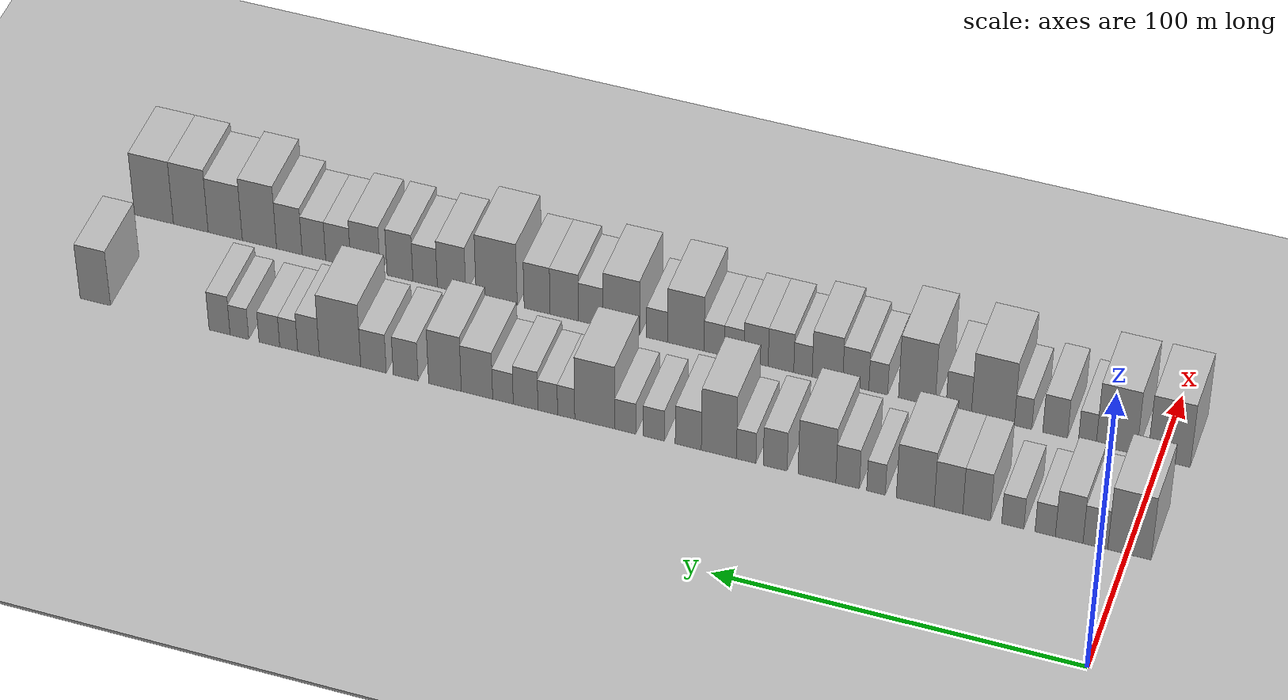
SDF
<sdf version="1.6">
 <world name="default">
  <include><name>ground_plane_1</name><uri>model://HANNAS_ground_plane</uri></include>
  <include>
   <name>ground_plane_2</name>
   <uri>model://HANNAS_ground_plane</uri>
   <pose>100 0 0  0 0 0</pose>
  </include>
  <model name="building_36">
   <static>1</static>
   <pose>50.0000 -0.5965 0 0.000000 0.000000 0.000000</pose>
   <link name="link">
    <pose>0 0 12.00 0 0 0</pose>
    <collision name="collision"><geometry><box><size>20.0000 11.5688 24.0000</size></box></geometry></collision>
    <visual name="visual">
     <cast_shadows>0</cast_shadows>
     <geometry><box><size>20.0000 11.5688 24.0000</size></box></geometry>
     <material>
      <script>
       <uri>model://HANNAS_wall/materials/scripts</uri>
       <uri>model://HANNAS_wall/materials/textures</uri>
       <name>vrc/HANNAS_wall</name>
      </script>
     </material>
    </visual>
   </link>
  </model>
  <model name="building_37">
   <static>1</static>
   <pose>50.0000 8.4967 0 0.000000 0.000000 0.000000</pose>
   <link name="link">
    <pose>0 0 7.50 0 0 0</pose>
    <collision name="collision"><geometry><box><size>20.0000 6.6175 15.0000</size></box></geometry></collision>
    <visual name="visual">
     <cast_shadows>0</cast_shadows>
     <geometry><box><size>20.0000 6.6175 15.0000</size></box></geometry>
     <material>
      <script>
       <uri>model://HANNAS_wall/materials/scripts</uri>
       <uri>model://HANNAS_wall/materials/textures</uri>
       <name>vrc/HANNAS_wall</name>
      </script>
     </material>
    </visual>
   </link>
  </model>
  <model name="building_38">
   <static>1</static>
   <pose>50.0000 15.5070 0 0.000000 0.000000 0.000000</pose>
   <link name="link">
    <pose>0 0 9.00 0 0 0</pose>
    <collision name="collision"><geometry><box><size>20.0000 7.4033 18.0000</size></box></geometry></collision>
    <visual name="visual">
     <cast_shadows>0</cast_shadows>
     <geometry><box><size>20.0000 7.4033 18.0000</size></box></geometry>
     <material>
      <script>
       <uri>model://HANNAS_wall/materials/scripts</uri>
       <uri>model://HANNAS_wall/materials/textures</uri>
       <name>vrc/HANNAS_wall</name>
      </script>
     </material>
    </visual>
   </link>
  </model>
  <model name="building_39">
   <static>1</static>
   <pose>50.0000 21.9332 0 0.000000 0.000000 0.000000</pose>
   <link name="link">
    <pose>0 0 6.00 0 0 0</pose>
    <collision name="collision"><geometry><box><size>20.0000 5.4490 12.0000</size></box></geometry></collision>
    <visual name="visual">
     <cast_shadows>0</cast_shadows>
     <geometry><box><size>20.0000 5.4490 12.0000</size></box></geometry>
     <material>
      <script>
       <uri>model://HANNAS_wall/materials/scripts</uri>
       <uri>model://HANNAS_wall/materials/textures</uri>
       <name>vrc/HANNAS_wall</name>
      </script>
     </material>
    </visual>
   </link>
  </model>
  <model name="building_40">
   <static>1</static>
   <pose>50.0000 30.6515 0 0.000000 0.000000 0.000000</pose>
   <link name="link">
    <pose>0 0 6.00 0 0 0</pose>
    <collision name="collision"><geometry><box><size>20.0000 5.9877 12.0000</size></box></geometry></collision>
    <visual name="visual">
     <cast_shadows>0</cast_shadows>
     <geometry><box><size>20.0000 5.9877 12.0000</size></box></geometry>
     <material>
      <script>
       <uri>model://HANNAS_wall/materials/scripts</uri>
       <uri>model://HANNAS_wall/materials/textures</uri>
       <name>vrc/HANNAS_wall</name>
      </script>
     </material>
    </visual>
   </link>
  </model>
  <model name="building_41">
   <static>1</static>
   <pose>50.0000 40.4001 0 0.000000 0.000000 0.000000</pose>
   <link name="link">
    <pose>0 0 9.00 0 0 0</pose>
    <collision name="collision"><geometry><box><size>20.0000 7.5096 18.0000</size></box></geometry></collision>
    <visual name="visual">
     <cast_shadows>0</cast_shadows>
     <geometry><box><size>20.0000 7.5096 18.0000</size></box></geometry>
     <material>
      <script>
       <uri>model://HANNAS_wall/materials/scripts</uri>
       <uri>model://HANNAS_wall/materials/textures</uri>
       <name>vrc/HANNAS_wall</name>
      </script>
     </material>
    </visual>
   </link>
  </model>
  <model name="building_42">
   <static>1</static>
   <pose>50.0000 48.0204 0 0.000000 0.000000 0.000000</pose>
   <link name="link">
    <pose>0 0 9.00 0 0 0</pose>
    <collision name="collision"><geometry><box><size>20.0000 7.7310 18.0000</size></box></geometry></collision>
    <visual name="visual">
     <cast_shadows>0</cast_shadows>
     <geometry><box><size>20.0000 7.7310 18.0000</size></box></geometry>
     <material>
      <script>
       <uri>model://HANNAS_wall/materials/scripts</uri>
       <uri>model://HANNAS_wall/materials/textures</uri>
       <name>vrc/HANNAS_wall</name>
      </script>
     </material>
    </visual>
   </link>
  </model>
  <model name="building_43">
   <static>1</static>
   <pose>50.0000 57.0423 0 0.000000 0.000000 0.000000</pose>
   <link name="link">
    <pose>0 0 10.50 0 0 0</pose>
    <collision name="collision"><geometry><box><size>20.0000 10.3128 21.0000</size></box></geometry></collision>
    <visual name="visual">
     <cast_shadows>0</cast_shadows>
     <geometry><box><size>20.0000 10.3128 21.0000</size></box></geometry>
     <material>
      <script>
       <uri>model://HANNAS_wall/materials/scripts</uri>
       <uri>model://HANNAS_wall/materials/textures</uri>
       <name>vrc/HANNAS_wall</name>
      </script>
     </material>
    </visual>
   </link>
  </model>
  <model name="building_44">
   <static>1</static>
   <pose>50.0000 67.7351 0 0.000000 0.000000 0.000000</pose>
   <link name="link">
    <pose>0 0 6.00 0 0 0</pose>
    <collision name="collision"><geometry><box><size>20.0000 5.0728 12.0000</size></box></geometry></collision>
    <visual name="visual">
     <cast_shadows>0</cast_shadows>
     <geometry><box><size>20.0000 5.0728 12.0000</size></box></geometry>
     <material>
      <script>
       <uri>model://HANNAS_wall/materials/scripts</uri>
       <uri>model://HANNAS_wall/materials/textures</uri>
       <name>vrc/HANNAS_wall</name>
      </script>
     </material>
    </visual>
   </link>
  </model>
  <model name="building_45">
   <static>1</static>
   <pose>50.0000 75.4985 0 0.000000 0.000000 0.000000</pose>
   <link name="link">
    <pose>0 0 7.50 0 0 0</pose>
    <collision name="collision"><geometry><box><size>20.0000 6.4539 15.0000</size></box></geometry></collision>
    <visual name="visual">
     <cast_shadows>0</cast_shadows>
     <geometry><box><size>20.0000 6.4539 15.0000</size></box></geometry>
     <material>
      <script>
       <uri>model://HANNAS_wall/materials/scripts</uri>
       <uri>model://HANNAS_wall/materials/textures</uri>
       <name>vrc/HANNAS_wall</name>
      </script>
     </material>
    </visual>
   </link>
  </model>
  <model name="building_46">
   <static>1</static>
   <pose>50.0000 83.9208 0 0.000000 0.000000 0.000000</pose>
   <link name="link">
    <pose>0 0 10.50 0 0 0</pose>
    <collision name="collision"><geometry><box><size>20.0000 10.3909 21.0000</size></box></geometry></collision>
    <visual name="visual">
     <cast_shadows>0</cast_shadows>
     <geometry><box><size>20.0000 10.3909 21.0000</size></box></geometry>
     <material>
      <script>
       <uri>model://HANNAS_wall/materials/scripts</uri>
       <uri>model://HANNAS_wall/materials/textures</uri>
       <name>vrc/HANNAS_wall</name>
      </script>
     </material>
    </visual>
   </link>
  </model>
  <model name="building_47">
   <static>1</static>
   <pose>50.0000 95.4158 0 0.000000 0.000000 0.000000</pose>
   <link name="link">
    <pose>0 0 7.50 0 0 0</pose>
    <collision name="collision"><geometry><box><size>20.0000 6.5991 15.0000</size></box></geometry></collision>
    <visual name="visual">
     <cast_shadows>0</cast_shadows>
     <geometry><box><size>20.0000 6.5991 15.0000</size></box></geometry>
     <material>
      <script>
       <uri>model://HANNAS_wall/materials/scripts</uri>
       <uri>model://HANNAS_wall/materials/textures</uri>
       <name>vrc/HANNAS_wall</name>
      </script>
     </material>
    </visual>
   </link>
  </model>
  <model name="building_48">
   <static>1</static>
   <pose>50.0000 103.4176 0 0.000000 0.000000 0.000000</pose>
   <link name="link">
    <pose>0 0 6.00 0 0 0</pose>
    <collision name="collision"><geometry><box><size>20.0000 5.4044 12.0000</size></box></geometry></collision>
    <visual name="visual">
     <cast_shadows>0</cast_shadows>
     <geometry><box><size>20.0000 5.4044 12.0000</size></box></geometry>
     <material>
      <script>
       <uri>model://HANNAS_wall/materials/scripts</uri>
       <uri>model://HANNAS_wall/materials/textures</uri>
       <name>vrc/HANNAS_wall</name>
      </script>
     </material>
    </visual>
   </link>
  </model>
  <model name="building_49">
   <static>1</static>
   <pose>50.0000 110.9824 0 0.000000 0.000000 0.000000</pose>
   <link name="link">
    <pose>0 0 12.00 0 0 0</pose>
    <collision name="collision"><geometry><box><size>20.0000 9.7251 24.0000</size></box></geometry></collision>
    <visual name="visual">
     <cast_shadows>0</cast_shadows>
     <geometry><box><size>20.0000 9.7251 24.0000</size></box></geometry>
     <material>
      <script>
       <uri>model://HANNAS_wall/materials/scripts</uri>
       <uri>model://HANNAS_wall/materials/textures</uri>
       <name>vrc/HANNAS_wall</name>
      </script>
     </material>
    </visual>
   </link>
  </model>
  <model name="building_50">
   <static>1</static>
   <pose>50.0000 119.4757 0 0.000000 0.000000 0.000000</pose>
   <link name="link">
    <pose>0 0 7.50 0 0 0</pose>
    <collision name="collision"><geometry><box><size>20.0000 7.2615 15.0000</size></box></geometry></collision>
    <visual name="visual">
     <cast_shadows>0</cast_shadows>
     <geometry><box><size>20.0000 7.2615 15.0000</size></box></geometry>
     <material>
      <script>
       <uri>model://HANNAS_wall/materials/scripts</uri>
       <uri>model://HANNAS_wall/materials/textures</uri>
       <name>vrc/HANNAS_wall</name>
      </script>
     </material>
    </visual>
   </link>
  </model>
  <model name="building_51">
   <static>1</static>
   <pose>50.0000 129.0980 0 0.000000 0.000000 0.000000</pose>
   <link name="link">
    <pose>0 0 6.00 0 0 0</pose>
    <collision name="collision"><geometry><box><size>20.0000 5.9830 12.0000</size></box></geometry></collision>
    <visual name="visual">
     <cast_shadows>0</cast_shadows>
     <geometry><box><size>20.0000 5.9830 12.0000</size></box></geometry>
     <material>
      <script>
       <uri>model://HANNAS_wall/materials/scripts</uri>
       <uri>model://HANNAS_wall/materials/textures</uri>
       <name>vrc/HANNAS_wall</name>
      </script>
     </material>
    </visual>
   </link>
  </model>
  <model name="building_52">
   <static>1</static>
   <pose>50.0000 137.0280 0 0.000000 0.000000 0.000000</pose>
   <link name="link">
    <pose>0 0 6.00 0 0 0</pose>
    <collision name="collision"><geometry><box><size>20.0000 5.8771 12.0000</size></box></geometry></collision>
    <visual name="visual">
     <cast_shadows>0</cast_shadows>
     <geometry><box><size>20.0000 5.8771 12.0000</size></box></geometry>
     <material>
      <script>
       <uri>model://HANNAS_wall/materials/scripts</uri>
       <uri>model://HANNAS_wall/materials/textures</uri>
       <name>vrc/HANNAS_wall</name>
      </script>
     </material>
    </visual>
   </link>
  </model>
  <model name="building_53">
   <static>1</static>
   <pose>50.0000 145.5949 0 0.000000 0.000000 0.000000</pose>
   <link name="link">
    <pose>0 0 12.00 0 0 0</pose>
    <collision name="collision"><geometry><box><size>20.0000 11.2568 24.0000</size></box></geometry></collision>
    <visual name="visual">
     <cast_shadows>0</cast_shadows>
     <geometry><box><size>20.0000 11.2568 24.0000</size></box></geometry>
     <material>
      <script>
       <uri>model://HANNAS_wall/materials/scripts</uri>
       <uri>model://HANNAS_wall/materials/textures</uri>
       <name>vrc/HANNAS_wall</name>
      </script>
     </material>
    </visual>
   </link>
  </model>
  <model name="building_54">
   <static>1</static>
   <pose>50.0000 153.6471 0 0.000000 0.000000 0.000000</pose>
   <link name="link">
    <pose>0 0 6.00 0 0 0</pose>
    <collision name="collision"><geometry><box><size>20.0000 4.8477 12.0000</size></box></geometry></collision>
    <visual name="visual">
     <cast_shadows>0</cast_shadows>
     <geometry><box><size>20.0000 4.8477 12.0000</size></box></geometry>
     <material>
      <script>
       <uri>model://HANNAS_wall/materials/scripts</uri>
       <uri>model://HANNAS_wall/materials/textures</uri>
       <name>vrc/HANNAS_wall</name>
      </script>
     </material>
    </visual>
   </link>
  </model>
  <model name="building_55">
   <static>1</static>
   <pose>50.0000 158.8419 0 0.000000 0.000000 0.000000</pose>
   <link name="link">
    <pose>0 0 6.00 0 0 0</pose>
    <collision name="collision"><geometry><box><size>20.0000 5.5418 12.0000</size></box></geometry></collision>
    <visual name="visual">
     <cast_shadows>0</cast_shadows>
     <geometry><box><size>20.0000 5.5418 12.0000</size></box></geometry>
     <material>
      <script>
       <uri>model://HANNAS_wall/materials/scripts</uri>
       <uri>model://HANNAS_wall/materials/textures</uri>
       <name>vrc/HANNAS_wall</name>
      </script>
     </material>
    </visual>
   </link>
  </model>
  <model name="building_56">
   <static>1</static>
   <pose>50.0000 165.1013 0 0.000000 0.000000 0.000000</pose>
   <link name="link">
    <pose>0 0 7.50 0 0 0</pose>
    <collision name="collision"><geometry><box><size>20.0000 6.9770 15.0000</size></box></geometry></collision>
    <visual name="visual">
     <cast_shadows>0</cast_shadows>
     <geometry><box><size>20.0000 6.9770 15.0000</size></box></geometry>
     <material>
      <script>
       <uri>model://HANNAS_wall/materials/scripts</uri>
       <uri>model://HANNAS_wall/materials/textures</uri>
       <name>vrc/HANNAS_wall</name>
      </script>
     </material>
    </visual>
   </link>
  </model>
  <model name="building_57">
   <static>1</static>
   <pose>50.0000 171.5074 0 0.000000 0.000000 0.000000</pose>
   <link name="link">
    <pose>0 0 6.00 0 0 0</pose>
    <collision name="collision"><geometry><box><size>20.0000 5.8352 12.0000</size></box></geometry></collision>
    <visual name="visual">
     <cast_shadows>0</cast_shadows>
     <geometry><box><size>20.0000 5.8352 12.0000</size></box></geometry>
     <material>
      <script>
       <uri>model://HANNAS_wall/materials/scripts</uri>
       <uri>model://HANNAS_wall/materials/textures</uri>
       <name>vrc/HANNAS_wall</name>
      </script>
     </material>
    </visual>
   </link>
  </model>
  <model name="building_58">
   <static>1</static>
   <pose>50.0000 178.8829 0 0.000000 0.000000 0.000000</pose>
   <link name="link">
    <pose>0 0 9.00 0 0 0</pose>
    <collision name="collision"><geometry><box><size>20.0000 8.9159 18.0000</size></box></geometry></collision>
    <visual name="visual">
     <cast_shadows>0</cast_shadows>
     <geometry><box><size>20.0000 8.9159 18.0000</size></box></geometry>
     <material>
      <script>
       <uri>model://HANNAS_wall/materials/scripts</uri>
       <uri>model://HANNAS_wall/materials/textures</uri>
       <name>vrc/HANNAS_wall</name>
      </script>
     </material>
    </visual>
   </link>
  </model>
  <model name="building_59">
   <static>1</static>
   <pose>50.0000 187.9936 0 0.000000 0.000000 0.000000</pose>
   <link name="link">
    <pose>0 0 10.50 0 0 0</pose>
    <collision name="collision"><geometry><box><size>20.0000 9.3054 21.0000</size></box></geometry></collision>
    <visual name="visual">
     <cast_shadows>0</cast_shadows>
     <geometry><box><size>20.0000 9.3054 21.0000</size></box></geometry>
     <material>
      <script>
       <uri>model://HANNAS_wall/materials/scripts</uri>
       <uri>model://HANNAS_wall/materials/textures</uri>
       <name>vrc/HANNAS_wall</name>
      </script>
     </material>
    </visual>
   </link>
  </model>
  <model name="building_60">
   <static>1</static>
   <pose>50.0000 199.2032 0 0.000000 0.000000 0.000000</pose>
   <link name="link">
    <pose>0 0 7.50 0 0 0</pose>
    <collision name="collision"><geometry><box><size>20.0000 7.1140 15.0000</size></box></geometry></collision>
    <visual name="visual">
     <cast_shadows>0</cast_shadows>
     <geometry><box><size>20.0000 7.1140 15.0000</size></box></geometry>
     <material>
      <script>
       <uri>model://HANNAS_wall/materials/scripts</uri>
       <uri>model://HANNAS_wall/materials/textures</uri>
       <name>vrc/HANNAS_wall</name>
      </script>
     </material>
    </visual>
   </link>
  </model>
  <model name="building_61">
   <static>1</static>
   <pose>50.0000 208.4197 0 0.000000 0.000000 0.000000</pose>
   <link name="link">
    <pose>0 0 7.50 0 0 0</pose>
    <collision name="collision"><geometry><box><size>20.0000 7.3190 15.0000</size></box></geometry></collision>
    <visual name="visual">
     <cast_shadows>0</cast_shadows>
     <geometry><box><size>20.0000 7.3190 15.0000</size></box></geometry>
     <material>
      <script>
       <uri>model://HANNAS_wall/materials/scripts</uri>
       <uri>model://HANNAS_wall/materials/textures</uri>
       <name>vrc/HANNAS_wall</name>
      </script>
     </material>
    </visual>
   </link>
  </model>
  <model name="building_62">
   <static>1</static>
   <pose>50.0000 218.0599 0 0.000000 0.000000 0.000000</pose>
   <link name="link">
    <pose>0 0 12.00 0 0 0</pose>
    <collision name="collision"><geometry><box><size>20.0000 11.9614 24.0000</size></box></geometry></collision>
    <visual name="visual">
     <cast_shadows>0</cast_shadows>
     <geometry><box><size>20.0000 11.9614 24.0000</size></box></geometry>
     <material>
      <script>
       <uri>model://HANNAS_wall/materials/scripts</uri>
       <uri>model://HANNAS_wall/materials/textures</uri>
       <name>vrc/HANNAS_wall</name>
      </script>
     </material>
    </visual>
   </link>
  </model>
  <model name="building_63">
   <static>1</static>
   <pose>50.0000 227.1695 0 0.000000 0.000000 0.000000</pose>
   <link name="link">
    <pose>0 0 7.50 0 0 0</pose>
    <collision name="collision"><geometry><box><size>20.0000 6.2578 15.0000</size></box></geometry></collision>
    <visual name="visual">
     <cast_shadows>0</cast_shadows>
     <geometry><box><size>20.0000 6.2578 15.0000</size></box></geometry>
     <material>
      <script>
       <uri>model://HANNAS_wall/materials/scripts</uri>
       <uri>model://HANNAS_wall/materials/textures</uri>
       <name>vrc/HANNAS_wall</name>
      </script>
     </material>
    </visual>
   </link>
  </model>
  <model name="building_64">
   <static>1</static>
   <pose>50.0000 232.8984 0 0.000000 0.000000 0.000000</pose>
   <link name="link">
    <pose>0 0 6.00 0 0 0</pose>
    <collision name="collision"><geometry><box><size>20.0000 5.2000 12.0000</size></box></geometry></collision>
    <visual name="visual">
     <cast_shadows>0</cast_shadows>
     <geometry><box><size>20.0000 5.2000 12.0000</size></box></geometry>
     <material>
      <script>
       <uri>model://HANNAS_wall/materials/scripts</uri>
       <uri>model://HANNAS_wall/materials/textures</uri>
       <name>vrc/HANNAS_wall</name>
      </script>
     </material>
    </visual>
   </link>
  </model>
  <model name="building_65">
   <static>1</static>
   <pose>50.0000 238.4969 0 0.000000 0.000000 0.000000</pose>
   <link name="link">
    <pose>0 0 6.00 0 0 0</pose>
    <collision name="collision"><geometry><box><size>20.0000 5.9970 12.0000</size></box></geometry></collision>
    <visual name="visual">
     <cast_shadows>0</cast_shadows>
     <geometry><box><size>20.0000 5.9970 12.0000</size></box></geometry>
     <material>
      <script>
       <uri>model://HANNAS_wall/materials/scripts</uri>
       <uri>model://HANNAS_wall/materials/textures</uri>
       <name>vrc/HANNAS_wall</name>
      </script>
     </material>
    </visual>
   </link>
  </model>
  <model name="building_66">
   <static>1</static>
   <pose>50.0000 247.2121 0 0.000000 0.000000 0.000000</pose>
   <link name="link">
    <pose>0 0 6.00 0 0 0</pose>
    <collision name="collision"><geometry><box><size>20.0000 5.4335 12.0000</size></box></geometry></collision>
    <visual name="visual">
     <cast_shadows>0</cast_shadows>
     <geometry><box><size>20.0000 5.4335 12.0000</size></box></geometry>
     <material>
      <script>
       <uri>model://HANNAS_wall/materials/scripts</uri>
       <uri>model://HANNAS_wall/materials/textures</uri>
       <name>vrc/HANNAS_wall</name>
      </script>
     </material>
    </visual>
   </link>
  </model>
  <model name="building_67">
   <static>1</static>
   <pose>50.0000 252.9840 0 0.000000 0.000000 0.000000</pose>
   <link name="link">
    <pose>0 0 7.50 0 0 0</pose>
    <collision name="collision"><geometry><box><size>20.0000 6.1104 15.0000</size></box></geometry></collision>
    <visual name="visual">
     <cast_shadows>0</cast_shadows>
     <geometry><box><size>20.0000 6.1104 15.0000</size></box></geometry>
     <material>
      <script>
       <uri>model://HANNAS_wall/materials/scripts</uri>
       <uri>model://HANNAS_wall/materials/textures</uri>
       <name>vrc/HANNAS_wall</name>
      </script>
     </material>
    </visual>
   </link>
  </model>
  <model name="building_68">
   <static>1</static>
   <pose>50.0000 289.4859 0 0.000000 0.000000 0.000000</pose>
   <link name="link">
    <pose>0 0 10.50 0 0 0</pose>
    <collision name="collision"><geometry><box><size>20.0000 8.9645 21.0000</size></box></geometry></collision>
    <visual name="visual">
     <cast_shadows>0</cast_shadows>
     <geometry><box><size>20.0000 8.9645 21.0000</size></box></geometry>
     <material>
      <script>
       <uri>model://HANNAS_wall/materials/scripts</uri>
       <uri>model://HANNAS_wall/materials/textures</uri>
       <name>vrc/HANNAS_wall</name>
      </script>
     </material>
    </visual>
   </link>
  </model>
  <model name="building_101">
   <static>1</static>
   <pose>85.0000 -2.3817 0 0.000000 0.000000 0.000000</pose>
   <link name="link">
    <pose>0 0 12.00 0 0 0</pose>
    <collision name="collision"><geometry><box><size>20.0000 11.5022 24.0000</size></box></geometry></collision>
    <visual name="visual">
     <cast_shadows>0</cast_shadows>
     <geometry><box><size>20.0000 11.5022 24.0000</size></box></geometry>
     <material>
      <script>
       <uri>model://HANNAS_wall/materials/scripts</uri>
       <uri>model://HANNAS_wall/materials/textures</uri>
       <name>vrc/HANNAS_wall</name>
      </script>
     </material>
    </visual>
   </link>
  </model>
  <model name="building_102">
   <static>1</static>
   <pose>85.0000 11.8843 0 0.000000 0.000000 0.000000</pose>
   <link name="link">
    <pose>0 0 12.00 0 0 0</pose>
    <collision name="collision"><geometry><box><size>20.0000 11.0299 24.0000</size></box></geometry></collision>
    <visual name="visual">
     <cast_shadows>0</cast_shadows>
     <geometry><box><size>20.0000 11.0299 24.0000</size></box></geometry>
     <material>
      <script>
       <uri>model://HANNAS_wall/materials/scripts</uri>
       <uri>model://HANNAS_wall/materials/textures</uri>
       <name>vrc/HANNAS_wall</name>
      </script>
     </material>
    </visual>
   </link>
  </model>
  <model name="building_103">
   <static>1</static>
   <pose>85.0000 19.8069 0 0.000000 0.000000 0.000000</pose>
   <link name="link">
    <pose>0 0 6.00 0 0 0</pose>
    <collision name="collision"><geometry><box><size>20.0000 4.8152 12.0000</size></box></geometry></collision>
    <visual name="visual">
     <cast_shadows>0</cast_shadows>
     <geometry><box><size>20.0000 4.8152 12.0000</size></box></geometry>
     <material>
      <script>
       <uri>model://HANNAS_wall/materials/scripts</uri>
       <uri>model://HANNAS_wall/materials/textures</uri>
       <name>vrc/HANNAS_wall</name>
      </script>
     </material>
    </visual>
   </link>
  </model>
  <model name="building_104">
   <static>1</static>
   <pose>85.0000 28.6116 0 0.000000 0.000000 0.000000</pose>
   <link name="link">
    <pose>0 0 7.50 0 0 0</pose>
    <collision name="collision"><geometry><box><size>20.0000 6.7942 15.0000</size></box></geometry></collision>
    <visual name="visual">
     <cast_shadows>0</cast_shadows>
     <geometry><box><size>20.0000 6.7942 15.0000</size></box></geometry>
     <material>
      <script>
       <uri>model://HANNAS_wall/materials/scripts</uri>
       <uri>model://HANNAS_wall/materials/textures</uri>
       <name>vrc/HANNAS_wall</name>
      </script>
     </material>
    </visual>
   </link>
  </model>
  <model name="building_105">
   <static>1</static>
   <pose>85.0000 37.4100 0 0.000000 0.000000 0.000000</pose>
   <link name="link">
    <pose>0 0 6.00 0 0 0</pose>
    <collision name="collision"><geometry><box><size>20.0000 4.8026 12.0000</size></box></geometry></collision>
    <visual name="visual">
     <cast_shadows>0</cast_shadows>
     <geometry><box><size>20.0000 4.8026 12.0000</size></box></geometry>
     <material>
      <script>
       <uri>model://HANNAS_wall/materials/scripts</uri>
       <uri>model://HANNAS_wall/materials/textures</uri>
       <name>vrc/HANNAS_wall</name>
      </script>
     </material>
    </visual>
   </link>
  </model>
  <model name="building_106">
   <static>1</static>
   <pose>85.0000 45.7350 0 0.000000 0.000000 0.000000</pose>
   <link name="link">
    <pose>0 0 12.00 0 0 0</pose>
    <collision name="collision"><geometry><box><size>20.0000 11.8475 24.0000</size></box></geometry></collision>
    <visual name="visual">
     <cast_shadows>0</cast_shadows>
     <geometry><box><size>20.0000 11.8475 24.0000</size></box></geometry>
     <material>
      <script>
       <uri>model://HANNAS_wall/materials/scripts</uri>
       <uri>model://HANNAS_wall/materials/textures</uri>
       <name>vrc/HANNAS_wall</name>
      </script>
     </material>
    </visual>
   </link>
  </model>
  <model name="building_107">
   <static>1</static>
   <pose>85.0000 55.1727 0 0.000000 0.000000 0.000000</pose>
   <link name="link">
    <pose>0 0 7.50 0 0 0</pose>
    <collision name="collision"><geometry><box><size>20.0000 7.0278 15.0000</size></box></geometry></collision>
    <visual name="visual">
     <cast_shadows>0</cast_shadows>
     <geometry><box><size>20.0000 7.0278 15.0000</size></box></geometry>
     <material>
      <script>
       <uri>model://HANNAS_wall/materials/scripts</uri>
       <uri>model://HANNAS_wall/materials/textures</uri>
       <name>vrc/HANNAS_wall</name>
      </script>
     </material>
    </visual>
   </link>
  </model>
  <model name="building_108">
   <static>1</static>
   <pose>85.0000 66.7685 0 0.000000 0.000000 0.000000</pose>
   <link name="link">
    <pose>0 0 12.00 0 0 0</pose>
    <collision name="collision"><geometry><box><size>20.0000 10.1637 24.0000</size></box></geometry></collision>
    <visual name="visual">
     <cast_shadows>0</cast_shadows>
     <geometry><box><size>20.0000 10.1637 24.0000</size></box></geometry>
     <material>
      <script>
       <uri>model://HANNAS_wall/materials/scripts</uri>
       <uri>model://HANNAS_wall/materials/textures</uri>
       <name>vrc/HANNAS_wall</name>
      </script>
     </material>
    </visual>
   </link>
  </model>
  <model name="building_109">
   <static>1</static>
   <pose>85.0000 77.4833 0 0.000000 0.000000 0.000000</pose>
   <link name="link">
    <pose>0 0 6.00 0 0 0</pose>
    <collision name="collision"><geometry><box><size>20.0000 5.2660 12.0000</size></box></geometry></collision>
    <visual name="visual">
     <cast_shadows>0</cast_shadows>
     <geometry><box><size>20.0000 5.2660 12.0000</size></box></geometry>
     <material>
      <script>
       <uri>model://HANNAS_wall/materials/scripts</uri>
       <uri>model://HANNAS_wall/materials/textures</uri>
       <name>vrc/HANNAS_wall</name>
      </script>
     </material>
    </visual>
   </link>
  </model>
  <model name="building_110">
   <static>1</static>
   <pose>85.0000 83.7670 0 0.000000 0.000000 0.000000</pose>
   <link name="link">
    <pose>0 0 7.50 0 0 0</pose>
    <collision name="collision"><geometry><box><size>20.0000 7.3013 15.0000</size></box></geometry></collision>
    <visual name="visual">
     <cast_shadows>0</cast_shadows>
     <geometry><box><size>20.0000 7.3013 15.0000</size></box></geometry>
     <material>
      <script>
       <uri>model://HANNAS_wall/materials/scripts</uri>
       <uri>model://HANNAS_wall/materials/textures</uri>
       <name>vrc/HANNAS_wall</name>
      </script>
     </material>
    </visual>
   </link>
  </model>
  <model name="building_111">
   <static>1</static>
   <pose>85.0000 91.6896 0 0.000000 0.000000 0.000000</pose>
   <link name="link">
    <pose>0 0 9.00 0 0 0</pose>
    <collision name="collision"><geometry><box><size>20.0000 8.5438 18.0000</size></box></geometry></collision>
    <visual name="visual">
     <cast_shadows>0</cast_shadows>
     <geometry><box><size>20.0000 8.5438 18.0000</size></box></geometry>
     <material>
      <script>
       <uri>model://HANNAS_wall/materials/scripts</uri>
       <uri>model://HANNAS_wall/materials/textures</uri>
       <name>vrc/HANNAS_wall</name>
      </script>
     </material>
    </visual>
   </link>
  </model>
  <model name="building_112">
   <static>1</static>
   <pose>85.0000 98.5437 0 0.000000 0.000000 0.000000</pose>
   <link name="link">
    <pose>0 0 6.00 0 0 0</pose>
    <collision name="collision"><geometry><box><size>20.0000 5.1644 12.0000</size></box></geometry></collision>
    <visual name="visual">
     <cast_shadows>0</cast_shadows>
     <geometry><box><size>20.0000 5.1644 12.0000</size></box></geometry>
     <material>
      <script>
       <uri>model://HANNAS_wall/materials/scripts</uri>
       <uri>model://HANNAS_wall/materials/textures</uri>
       <name>vrc/HANNAS_wall</name>
      </script>
     </material>
    </visual>
   </link>
  </model>
  <model name="building_113">
   <static>1</static>
   <pose>85.0000 104.7234 0 0.000000 0.000000 0.000000</pose>
   <link name="link">
    <pose>0 0 7.50 0 0 0</pose>
    <collision name="collision"><geometry><box><size>20.0000 7.1950 15.0000</size></box></geometry></collision>
    <visual name="visual">
     <cast_shadows>0</cast_shadows>
     <geometry><box><size>20.0000 7.1950 15.0000</size></box></geometry>
     <material>
      <script>
       <uri>model://HANNAS_wall/materials/scripts</uri>
       <uri>model://HANNAS_wall/materials/textures</uri>
       <name>vrc/HANNAS_wall</name>
      </script>
     </material>
    </visual>
   </link>
  </model>
  <model name="building_114">
   <static>1</static>
   <pose>85.0000 111.7532 0 0.000000 0.000000 0.000000</pose>
   <link name="link">
    <pose>0 0 7.50 0 0 0</pose>
    <collision name="collision"><geometry><box><size>20.0000 6.8646 15.0000</size></box></geometry></collision>
    <visual name="visual">
     <cast_shadows>0</cast_shadows>
     <geometry><box><size>20.0000 6.8646 15.0000</size></box></geometry>
     <material>
      <script>
       <uri>model://HANNAS_wall/materials/scripts</uri>
       <uri>model://HANNAS_wall/materials/textures</uri>
       <name>vrc/HANNAS_wall</name>
      </script>
     </material>
    </visual>
   </link>
  </model>
  <model name="building_115">
   <static>1</static>
   <pose>85.0000 117.9529 0 0.000000 0.000000 0.000000</pose>
   <link name="link">
    <pose>0 0 6.00 0 0 0</pose>
    <collision name="collision"><geometry><box><size>20.0000 5.5347 12.0000</size></box></geometry></collision>
    <visual name="visual">
     <cast_shadows>0</cast_shadows>
     <geometry><box><size>20.0000 5.5347 12.0000</size></box></geometry>
     <material>
      <script>
       <uri>model://HANNAS_wall/materials/scripts</uri>
       <uri>model://HANNAS_wall/materials/textures</uri>
       <name>vrc/HANNAS_wall</name>
      </script>
     </material>
    </visual>
   </link>
  </model>
  <model name="building_116">
   <static>1</static>
   <pose>85.0000 123.5769 0 0.000000 0.000000 0.000000</pose>
   <link name="link">
    <pose>0 0 6.00 0 0 0</pose>
    <collision name="collision"><geometry><box><size>20.0000 5.7134 12.0000</size></box></geometry></collision>
    <visual name="visual">
     <cast_shadows>0</cast_shadows>
     <geometry><box><size>20.0000 5.7134 12.0000</size></box></geometry>
     <material>
      <script>
       <uri>model://HANNAS_wall/materials/scripts</uri>
       <uri>model://HANNAS_wall/materials/textures</uri>
       <name>vrc/HANNAS_wall</name>
      </script>
     </material>
    </visual>
   </link>
  </model>
  <model name="building_117">
   <static>1</static>
   <pose>85.0000 131.6043 0 0.000000 0.000000 0.000000</pose>
   <link name="link">
    <pose>0 0 10.50 0 0 0</pose>
    <collision name="collision"><geometry><box><size>20.0000 10.3415 21.0000</size></box></geometry></collision>
    <visual name="visual">
     <cast_shadows>0</cast_shadows>
     <geometry><box><size>20.0000 10.3415 21.0000</size></box></geometry>
     <material>
      <script>
       <uri>model://HANNAS_wall/materials/scripts</uri>
       <uri>model://HANNAS_wall/materials/textures</uri>
       <name>vrc/HANNAS_wall</name>
      </script>
     </material>
    </visual>
   </link>
  </model>
  <model name="building_118">
   <static>1</static>
   <pose>85.0000 139.7650 0 0.000000 0.000000 0.000000</pose>
   <link name="link">
    <pose>0 0 6.00 0 0 0</pose>
    <collision name="collision"><geometry><box><size>20.0000 5.9799 12.0000</size></box></geometry></collision>
    <visual name="visual">
     <cast_shadows>0</cast_shadows>
     <geometry><box><size>20.0000 5.9799 12.0000</size></box></geometry>
     <material>
      <script>
       <uri>model://HANNAS_wall/materials/scripts</uri>
       <uri>model://HANNAS_wall/materials/textures</uri>
       <name>vrc/HANNAS_wall</name>
      </script>
     </material>
    </visual>
   </link>
  </model>
  <model name="building_119">
   <static>1</static>
   <pose>85.0000 149.9678 0 0.000000 0.000000 0.000000</pose>
   <link name="link">
    <pose>0 0 10.50 0 0 0</pose>
    <collision name="collision"><geometry><box><size>20.0000 10.4256 21.0000</size></box></geometry></collision>
    <visual name="visual">
     <cast_shadows>0</cast_shadows>
     <geometry><box><size>20.0000 10.4256 21.0000</size></box></geometry>
     <material>
      <script>
       <uri>model://HANNAS_wall/materials/scripts</uri>
       <uri>model://HANNAS_wall/materials/textures</uri>
       <name>vrc/HANNAS_wall</name>
      </script>
     </material>
    </visual>
   </link>
  </model>
  <model name="building_120">
   <static>1</static>
   <pose>85.0000 158.7238 0 0.000000 0.000000 0.000000</pose>
   <link name="link">
    <pose>0 0 7.50 0 0 0</pose>
    <collision name="collision"><geometry><box><size>20.0000 7.0864 15.0000</size></box></geometry></collision>
    <visual name="visual">
     <cast_shadows>0</cast_shadows>
     <geometry><box><size>20.0000 7.0864 15.0000</size></box></geometry>
     <material>
      <script>
       <uri>model://HANNAS_wall/materials/scripts</uri>
       <uri>model://HANNAS_wall/materials/textures</uri>
       <name>vrc/HANNAS_wall</name>
      </script>
     </material>
    </visual>
   </link>
  </model>
  <model name="building_121">
   <static>1</static>
   <pose>85.0000 166.3435 0 0.000000 0.000000 0.000000</pose>
   <link name="link">
    <pose>0 0 9.00 0 0 0</pose>
    <collision name="collision"><geometry><box><size>20.0000 8.1529 18.0000</size></box></geometry></collision>
    <visual name="visual">
     <cast_shadows>0</cast_shadows>
     <geometry><box><size>20.0000 8.1529 18.0000</size></box></geometry>
     <material>
      <script>
       <uri>model://HANNAS_wall/materials/scripts</uri>
       <uri>model://HANNAS_wall/materials/textures</uri>
       <name>vrc/HANNAS_wall</name>
      </script>
     </material>
    </visual>
   </link>
  </model>
  <model name="building_122">
   <static>1</static>
   <pose>85.0000 174.1622 0 0.000000 0.000000 0.000000</pose>
   <link name="link">
    <pose>0 0 9.00 0 0 0</pose>
    <collision name="collision"><geometry><box><size>20.0000 7.4846 18.0000</size></box></geometry></collision>
    <visual name="visual">
     <cast_shadows>0</cast_shadows>
     <geometry><box><size>20.0000 7.4846 18.0000</size></box></geometry>
     <material>
      <script>
       <uri>model://HANNAS_wall/materials/scripts</uri>
       <uri>model://HANNAS_wall/materials/textures</uri>
       <name>vrc/HANNAS_wall</name>
      </script>
     </material>
    </visual>
   </link>
  </model>
  <model name="building_123">
   <static>1</static>
   <pose>85.0000 185.8533 0 0.000000 0.000000 0.000000</pose>
   <link name="link">
    <pose>0 0 12.00 0 0 0</pose>
    <collision name="collision"><geometry><box><size>20.0000 11.8974 24.0000</size></box></geometry></collision>
    <visual name="visual">
     <cast_shadows>0</cast_shadows>
     <geometry><box><size>20.0000 11.8974 24.0000</size></box></geometry>
     <material>
      <script>
       <uri>model://HANNAS_wall/materials/scripts</uri>
       <uri>model://HANNAS_wall/materials/textures</uri>
       <name>vrc/HANNAS_wall</name>
      </script>
     </material>
    </visual>
   </link>
  </model>
  <model name="building_124">
   <static>1</static>
   <pose>85.0000 198.9534 0 0.000000 0.000000 0.000000</pose>
   <link name="link">
    <pose>0 0 9.00 0 0 0</pose>
    <collision name="collision"><geometry><box><size>20.0000 8.3029 18.0000</size></box></geometry></collision>
    <visual name="visual">
     <cast_shadows>0</cast_shadows>
     <geometry><box><size>20.0000 8.3029 18.0000</size></box></geometry>
     <material>
      <script>
       <uri>model://HANNAS_wall/materials/scripts</uri>
       <uri>model://HANNAS_wall/materials/textures</uri>
       <name>vrc/HANNAS_wall</name>
      </script>
     </material>
    </visual>
   </link>
  </model>
  <model name="building_125">
   <static>1</static>
   <pose>85.0000 206.6556 0 0.000000 0.000000 0.000000</pose>
   <link name="link">
    <pose>0 0 7.50 0 0 0</pose>
    <collision name="collision"><geometry><box><size>20.0000 7.1014 15.0000</size></box></geometry></collision>
    <visual name="visual">
     <cast_shadows>0</cast_shadows>
     <geometry><box><size>20.0000 7.1014 15.0000</size></box></geometry>
     <material>
      <script>
       <uri>model://HANNAS_wall/materials/scripts</uri>
       <uri>model://HANNAS_wall/materials/textures</uri>
       <name>vrc/HANNAS_wall</name>
      </script>
     </material>
    </visual>
   </link>
  </model>
  <model name="building_126">
   <static>1</static>
   <pose>85.0000 213.9838 0 0.000000 0.000000 0.000000</pose>
   <link name="link">
    <pose>0 0 9.00 0 0 0</pose>
    <collision name="collision"><geometry><box><size>20.0000 7.5550 18.0000</size></box></geometry></collision>
    <visual name="visual">
     <cast_shadows>0</cast_shadows>
     <geometry><box><size>20.0000 7.5550 18.0000</size></box></geometry>
     <material>
      <script>
       <uri>model://HANNAS_wall/materials/scripts</uri>
       <uri>model://HANNAS_wall/materials/textures</uri>
       <name>vrc/HANNAS_wall</name>
      </script>
     </material>
    </visual>
   </link>
  </model>
  <model name="building_127">
   <static>1</static>
   <pose>85.0000 224.0881 0 0.000000 0.000000 0.000000</pose>
   <link name="link">
    <pose>0 0 9.00 0 0 0</pose>
    <collision name="collision"><geometry><box><size>20.0000 8.6537 18.0000</size></box></geometry></collision>
    <visual name="visual">
     <cast_shadows>0</cast_shadows>
     <geometry><box><size>20.0000 8.6537 18.0000</size></box></geometry>
     <material>
      <script>
       <uri>model://HANNAS_wall/materials/scripts</uri>
       <uri>model://HANNAS_wall/materials/textures</uri>
       <name>vrc/HANNAS_wall</name>
      </script>
     </material>
    </visual>
   </link>
  </model>
  <model name="building_128">
   <static>1</static>
   <pose>85.0000 232.1134 0 0.000000 0.000000 0.000000</pose>
   <link name="link">
    <pose>0 0 7.50 0 0 0</pose>
    <collision name="collision"><geometry><box><size>20.0000 7.3967 15.0000</size></box></geometry></collision>
    <visual name="visual">
     <cast_shadows>0</cast_shadows>
     <geometry><box><size>20.0000 7.3967 15.0000</size></box></geometry>
     <material>
      <script>
       <uri>model://HANNAS_wall/materials/scripts</uri>
       <uri>model://HANNAS_wall/materials/textures</uri>
       <name>vrc/HANNAS_wall</name>
      </script>
     </material>
    </visual>
   </link>
  </model>
  <model name="building_129">
   <static>1</static>
   <pose>85.0000 239.2734 0 0.000000 0.000000 0.000000</pose>
   <link name="link">
    <pose>0 0 7.50 0 0 0</pose>
    <collision name="collision"><geometry><box><size>20.0000 6.9234 15.0000</size></box></geometry></collision>
    <visual name="visual">
     <cast_shadows>0</cast_shadows>
     <geometry><box><size>20.0000 6.9234 15.0000</size></box></geometry>
     <material>
      <script>
       <uri>model://HANNAS_wall/materials/scripts</uri>
       <uri>model://HANNAS_wall/materials/textures</uri>
       <name>vrc/HANNAS_wall</name>
      </script>
     </material>
    </visual>
   </link>
  </model>
  <model name="building_130">
   <static>1</static>
   <pose>85.0000 246.5230 0 0.000000 0.000000 0.000000</pose>
   <link name="link">
    <pose>0 0 9.00 0 0 0</pose>
    <collision name="collision"><geometry><box><size>20.0000 7.5756 18.0000</size></box></geometry></collision>
    <visual name="visual">
     <cast_shadows>0</cast_shadows>
     <geometry><box><size>20.0000 7.5756 18.0000</size></box></geometry>
     <material>
      <script>
       <uri>model://HANNAS_wall/materials/scripts</uri>
       <uri>model://HANNAS_wall/materials/textures</uri>
       <name>vrc/HANNAS_wall</name>
      </script>
     </material>
    </visual>
   </link>
  </model>
  <model name="building_131">
   <static>1</static>
   <pose>85.0000 255.3901 0 0.000000 0.000000 0.000000</pose>
   <link name="link">
    <pose>0 0 12.00 0 0 0</pose>
    <collision name="collision"><geometry><box><size>20.0000 10.1586 24.0000</size></box></geometry></collision>
    <visual name="visual">
     <cast_shadows>0</cast_shadows>
     <geometry><box><size>20.0000 10.1586 24.0000</size></box></geometry>
     <material>
      <script>
       <uri>model://HANNAS_wall/materials/scripts</uri>
       <uri>model://HANNAS_wall/materials/textures</uri>
       <name>vrc/HANNAS_wall</name>
      </script>
     </material>
    </visual>
   </link>
  </model>
  <model name="building_132">
   <static>1</static>
   <pose>85.0000 265.5498 0 0.000000 0.000000 0.000000</pose>
   <link name="link">
    <pose>0 0 10.50 0 0 0</pose>
    <collision name="collision"><geometry><box><size>20.0000 10.1608 21.0000</size></box></geometry></collision>
    <visual name="visual">
     <cast_shadows>0</cast_shadows>
     <geometry><box><size>20.0000 10.1608 21.0000</size></box></geometry>
     <material>
      <script>
       <uri>model://HANNAS_wall/materials/scripts</uri>
       <uri>model://HANNAS_wall/materials/textures</uri>
       <name>vrc/HANNAS_wall</name>
      </script>
     </material>
    </visual>
   </link>
  </model>
  <model name="building_133">
   <static>1</static>
   <pose>85.0000 275.8265 0 0.000000 0.000000 0.000000</pose>
   <link name="link">
    <pose>0 0 12.00 0 0 0</pose>
    <collision name="collision"><geometry><box><size>20.0000 10.3926 24.0000</size></box></geometry></collision>
    <visual name="visual">
     <cast_shadows>0</cast_shadows>
     <geometry><box><size>20.0000 10.3926 24.0000</size></box></geometry>
     <material>
      <script>
       <uri>model://HANNAS_wall/materials/scripts</uri>
       <uri>model://HANNAS_wall/materials/textures</uri>
       <name>vrc/HANNAS_wall</name>
      </script>
     </material>
    </visual>
   </link>
  </model>
  <model name="building_134">
   <static>1</static>
   <pose>85.0000 286.8474 0 0.000000 0.000000 0.000000</pose>
   <link name="link">
    <pose>0 0 12.00 0 0 0</pose>
    <collision name="collision"><geometry><box><size>20.0000 11.6492 24.0000</size></box></geometry></collision>
    <visual name="visual">
     <cast_shadows>0</cast_shadows>
     <geometry><box><size>20.0000 11.6492 24.0000</size></box></geometry>
     <material>
      <script>
       <uri>model://HANNAS_wall/materials/scripts</uri>
       <uri>model://HANNAS_wall/materials/textures</uri>
       <name>vrc/HANNAS_wall</name>
      </script>
     </material>
    </visual>
   </link>
  </model>
 </world>
</sdf>
